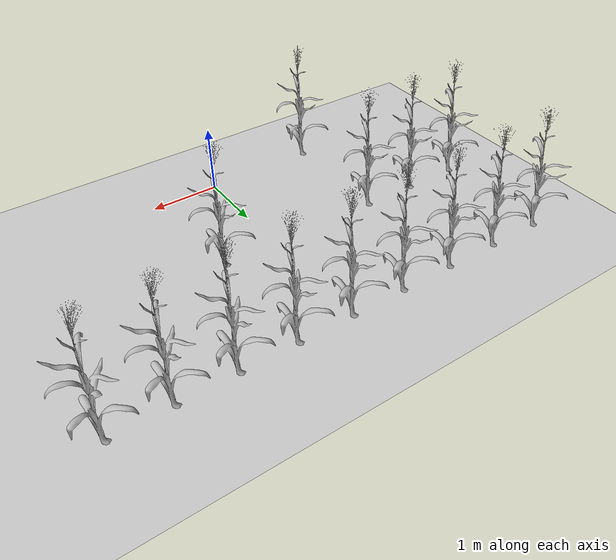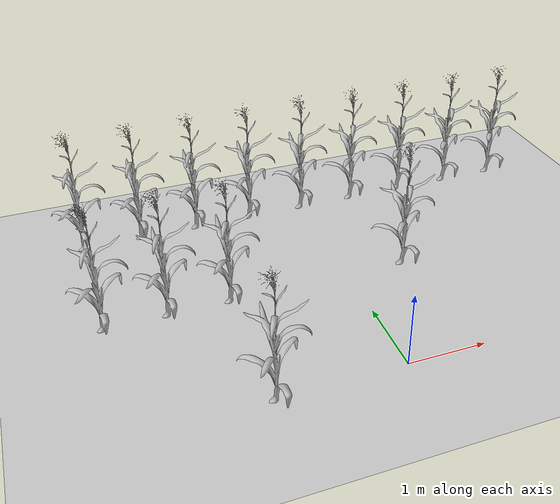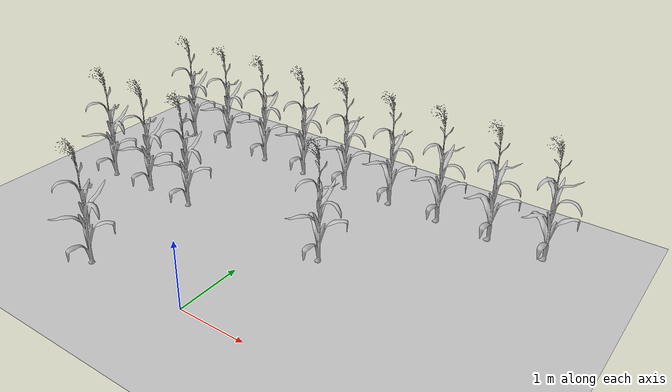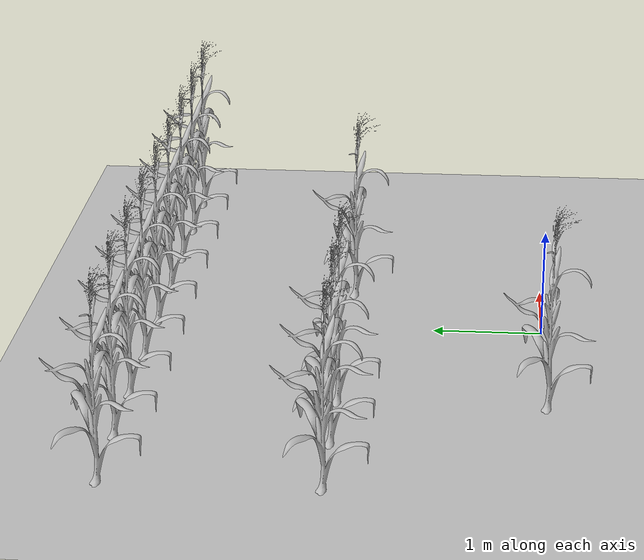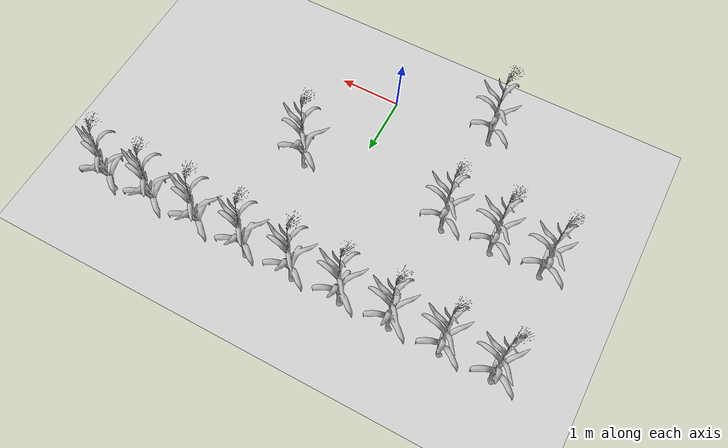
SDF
<sdf version="1.6">
 <world name="default">
  <model name="ground_plane">
   <static>1</static>
   <link name="link">
    <collision name="collision">
     <geometry><plane><normal>0 0 1</normal><size>100 100</size></plane></geometry>
     <surface><friction><ode><mu>100</mu><mu2>50</mu2></ode></friction></surface>
    </collision>
    <visual name="visual">
     <cast_shadows>0</cast_shadows>
     <geometry><plane><normal>0 0 1</normal><size>1000 1000</size></plane></geometry>
     <material>
      <script><uri>file://media/materials/scripts/gazebo.material</uri><name>Gazebo/Grey</name></script>
     </material>
    </visual>
    <velocity_decay><linear>0</linear><angular>0</angular></velocity_decay>
   </link>
  </model>
  <model name="corn_stalk_-2,1">
   <static>1</static>
   <link name="link">
    <pose>-1.6 1.8 0 0 -0 0</pose>
    <visual name="visual">
     <geometry><mesh><uri>model://corn/meshes/corn_stack.stl</uri><scale>0.01 0.01 0.01</scale></mesh></geometry>
     <material>
      <script>
       <uri>model://corn/materials/scripts</uri>
       <uri>model://corn/materials/textures</uri>
       <name>corn_stack/Diffuse</name>
      </script>
     </material>
    </visual>
    <collision name="Default">
     <geometry><mesh><uri>model://corn/meshes/corn_stack.stl</uri><scale>0.01 0.01 0.01</scale></mesh></geometry>
    </collision>
   </link>
  </model>
  <model name="corn_stalk_-3,1">
   <static>1</static>
   <link name="link">
    <pose>-2.4 1.8 0 0 -0 0</pose>
    <visual name="visual">
     <geometry><mesh><uri>model://corn/meshes/corn_stack.stl</uri><scale>0.01 0.01 0.01</scale></mesh></geometry>
     <material>
      <script>
       <uri>model://corn/materials/scripts</uri>
       <uri>model://corn/materials/textures</uri>
       <name>corn_stack/Diffuse</name>
      </script>
     </material>
    </visual>
    <collision name="Default">
     <geometry><mesh><uri>model://corn/meshes/corn_stack.stl</uri><scale>0.01 0.01 0.01</scale></mesh></geometry>
    </collision>
   </link>
  </model>
  <model name="corn_stalk_-4,1">
   <static>1</static>
   <link name="link">
    <pose>-3.2 1.8 0 0 -0 0</pose>
    <visual name="visual">
     <geometry><mesh><uri>model://corn/meshes/corn_stack.stl</uri><scale>0.01 0.01 0.01</scale></mesh></geometry>
     <material>
      <script>
       <uri>model://corn/materials/scripts</uri>
       <uri>model://corn/materials/textures</uri>
       <name>corn_stack/Diffuse</name>
      </script>
     </material>
    </visual>
    <collision name="Default">
     <geometry><mesh><uri>model://corn/meshes/corn_stack.stl</uri><scale>0.01 0.01 0.01</scale></mesh></geometry>
    </collision>
   </link>
  </model>
  <model name="corn_stalk_0,2">
   <static>1</static>
   <link name="link">
    <pose>0 3.6 0 0 -0 0</pose>
    <visual name="visual">
     <geometry><mesh><uri>model://corn/meshes/corn_stack.stl</uri><scale>0.01 0.01 0.01</scale></mesh></geometry>
     <material>
      <script>
       <uri>model://corn/materials/scripts</uri>
       <uri>model://corn/materials/textures</uri>
       <name>corn_stack/Diffuse</name>
      </script>
     </material>
    </visual>
    <collision name="Default">
     <geometry><mesh><uri>model://corn/meshes/corn_stack.stl</uri><scale>0.01 0.01 0.01</scale></mesh></geometry>
    </collision>
   </link>
  </model>
  <model name="corn_stalk_1,1">
   <static>1</static>
   <link name="link">
    <pose>0.8 1.8 0 0 -0 0</pose>
    <visual name="visual">
     <geometry><mesh><uri>model://corn/meshes/corn_stack.stl</uri><scale>0.01 0.01 0.01</scale></mesh></geometry>
     <material>
      <script>
       <uri>model://corn/materials/scripts</uri>
       <uri>model://corn/materials/textures</uri>
       <name>corn_stack/Diffuse</name>
      </script>
     </material>
    </visual>
    <collision name="Default">
     <geometry><mesh><uri>model://corn/meshes/corn_stack.stl</uri><scale>0.01 0.01 0.01</scale></mesh></geometry>
    </collision>
   </link>
  </model>
  <model name="corn_stalk_2,2">
   <static>1</static>
   <link name="link">
    <pose>1.6 3.6 0 0 -0 0</pose>
    <visual name="visual">
     <geometry><mesh><uri>model://corn/meshes/corn_stack.stl</uri><scale>0.01 0.01 0.01</scale></mesh></geometry>
     <material>
      <script>
       <uri>model://corn/materials/scripts</uri>
       <uri>model://corn/materials/textures</uri>
       <name>corn_stack/Diffuse</name>
      </script>
     </material>
    </visual>
    <collision name="Default">
     <geometry><mesh><uri>model://corn/meshes/corn_stack.stl</uri><scale>0.01 0.01 0.01</scale></mesh></geometry>
    </collision>
   </link>
  </model>
  <model name="corn_stalk_3,2">
   <static>1</static>
   <link name="link">
    <pose>2.4 3.6 0 0 -0 0</pose>
    <visual name="visual">
     <geometry><mesh><uri>model://corn/meshes/corn_stack.stl</uri><scale>0.01 0.01 0.01</scale></mesh></geometry>
     <material>
      <script>
       <uri>model://corn/materials/scripts</uri>
       <uri>model://corn/materials/textures</uri>
       <name>corn_stack/Diffuse</name>
      </script>
     </material>
    </visual>
    <collision name="Default">
     <geometry><mesh><uri>model://corn/meshes/corn_stack.stl</uri><scale>0.01 0.01 0.01</scale></mesh></geometry>
    </collision>
   </link>
  </model>
  <model name="corn_stalk_4,2">
   <static>1</static>
   <link name="link">
    <pose>3.2 3.6 0 0 -0 0</pose>
    <visual name="visual">
     <geometry><mesh><uri>model://corn/meshes/corn_stack.stl</uri><scale>0.01 0.01 0.01</scale></mesh></geometry>
     <material>
      <script>
       <uri>model://corn/materials/scripts</uri>
       <uri>model://corn/materials/textures</uri>
       <name>corn_stack/Diffuse</name>
      </script>
     </material>
    </visual>
    <collision name="Default">
     <geometry><mesh><uri>model://corn/meshes/corn_stack.stl</uri><scale>0.01 0.01 0.01</scale></mesh></geometry>
    </collision>
   </link>
  </model>
  <model name="corn_stalk_-1,2">
   <static>1</static>
   <link name="link">
    <pose>-0.8 3.6 0 0 -0 0</pose>
    <visual name="visual">
     <geometry><mesh><uri>model://corn/meshes/corn_stack.stl</uri><scale>0.01 0.01 0.01</scale></mesh></geometry>
     <material>
      <script>
       <uri>model://corn/materials/scripts</uri>
       <uri>model://corn/materials/textures</uri>
       <name>corn_stack/Diffuse</name>
      </script>
     </material>
    </visual>
    <collision name="Default">
     <geometry><mesh><uri>model://corn/meshes/corn_stack.stl</uri><scale>0.01 0.01 0.01</scale></mesh></geometry>
    </collision>
   </link>
  </model>
  <model name="corn_stalk_1,2">
   <static>1</static>
   <link name="link">
    <pose>0.8 3.6 0 0 -0 0</pose>
    <visual name="visual">
     <geometry><mesh><uri>model://corn/meshes/corn_stack.stl</uri><scale>0.01 0.01 0.01</scale></mesh></geometry>
     <material>
      <script>
       <uri>model://corn/materials/scripts</uri>
       <uri>model://corn/materials/textures</uri>
       <name>corn_stack/Diffuse</name>
      </script>
     </material>
    </visual>
    <collision name="Default">
     <geometry><mesh><uri>model://corn/meshes/corn_stack.stl</uri><scale>0.01 0.01 0.01</scale></mesh></geometry>
    </collision>
   </link>
  </model>
  <model name="corn_stalk_-2,0">
   <static>1</static>
   <link name="link">
    <pose>-1.6 0 0 0 -0 0</pose>
    <visual name="visual">
     <geometry><mesh><uri>model://corn/meshes/corn_stack.stl</uri><scale>0.01 0.01 0.01</scale></mesh></geometry>
     <material>
      <script>
       <uri>model://corn/materials/scripts</uri>
       <uri>model://corn/materials/textures</uri>
       <name>corn_stack/Diffuse</name>
      </script>
     </material>
    </visual>
    <collision name="Default">
     <geometry><mesh><uri>model://corn/meshes/corn_stack.stl</uri><scale>0.01 0.01 0.01</scale></mesh></geometry>
    </collision>
   </link>
  </model>
  <model name="corn_stalk_-2,2">
   <static>1</static>
   <link name="link">
    <pose>-1.6 3.6 0 0 -0 0</pose>
    <visual name="visual">
     <geometry><mesh><uri>model://corn/meshes/corn_stack.stl</uri><scale>0.01 0.01 0.01</scale></mesh></geometry>
     <material>
      <script>
       <uri>model://corn/materials/scripts</uri>
       <uri>model://corn/materials/textures</uri>
       <name>corn_stack/Diffuse</name>
      </script>
     </material>
    </visual>
    <collision name="Default">
     <geometry><mesh><uri>model://corn/meshes/corn_stack.stl</uri><scale>0.01 0.01 0.01</scale></mesh></geometry>
    </collision>
   </link>
  </model>
  <model name="corn_stalk_-3,2">
   <static>1</static>
   <link name="link">
    <pose>-2.4 3.6 0 0 -0 0</pose>
    <visual name="visual">
     <geometry><mesh><uri>model://corn/meshes/corn_stack.stl</uri><scale>0.01 0.01 0.01</scale></mesh></geometry>
     <material>
      <script>
       <uri>model://corn/materials/scripts</uri>
       <uri>model://corn/materials/textures</uri>
       <name>corn_stack/Diffuse</name>
      </script>
     </material>
    </visual>
    <collision name="Default">
     <geometry><mesh><uri>model://corn/meshes/corn_stack.stl</uri><scale>0.01 0.01 0.01</scale></mesh></geometry>
    </collision>
   </link>
  </model>
  <model name="corn_stalk_-4,2">
   <static>1</static>
   <link name="link">
    <pose>-3.2 3.6 0 0 -0 0</pose>
    <visual name="visual">
     <geometry><mesh><uri>model://corn/meshes/corn_stack.stl</uri><scale>0.01 0.01 0.01</scale></mesh></geometry>
     <material>
      <script>
       <uri>model://corn/materials/scripts</uri>
       <uri>model://corn/materials/textures</uri>
       <name>corn_stack/Diffuse</name>
      </script>
     </material>
    </visual>
    <collision name="Default">
     <geometry><mesh><uri>model://corn/meshes/corn_stack.stl</uri><scale>0.01 0.01 0.01</scale></mesh></geometry>
    </collision>
   </link>
  </model>
 </world>
</sdf>
